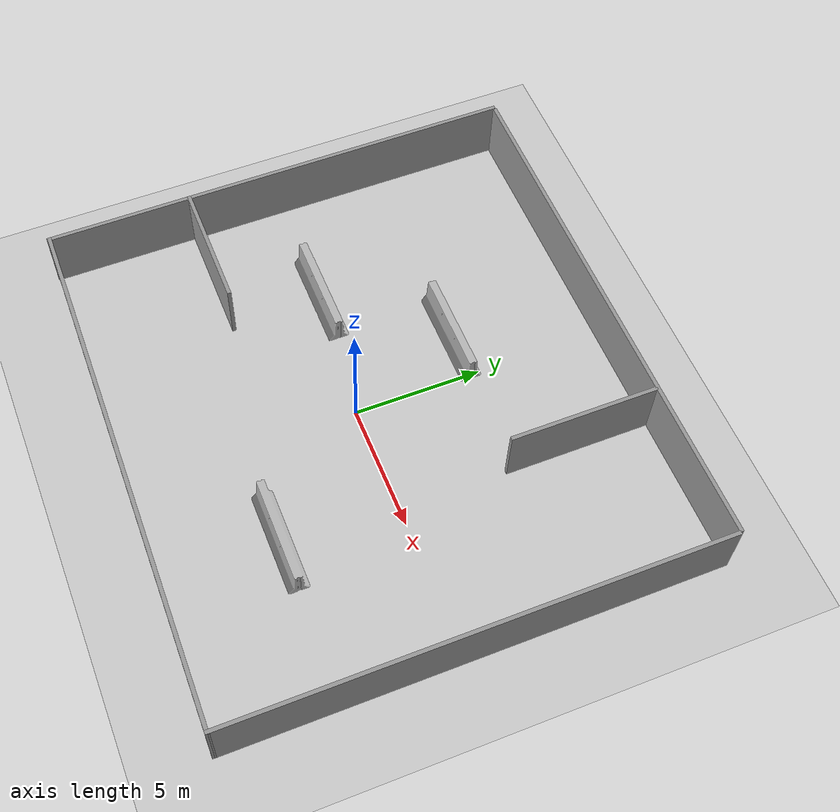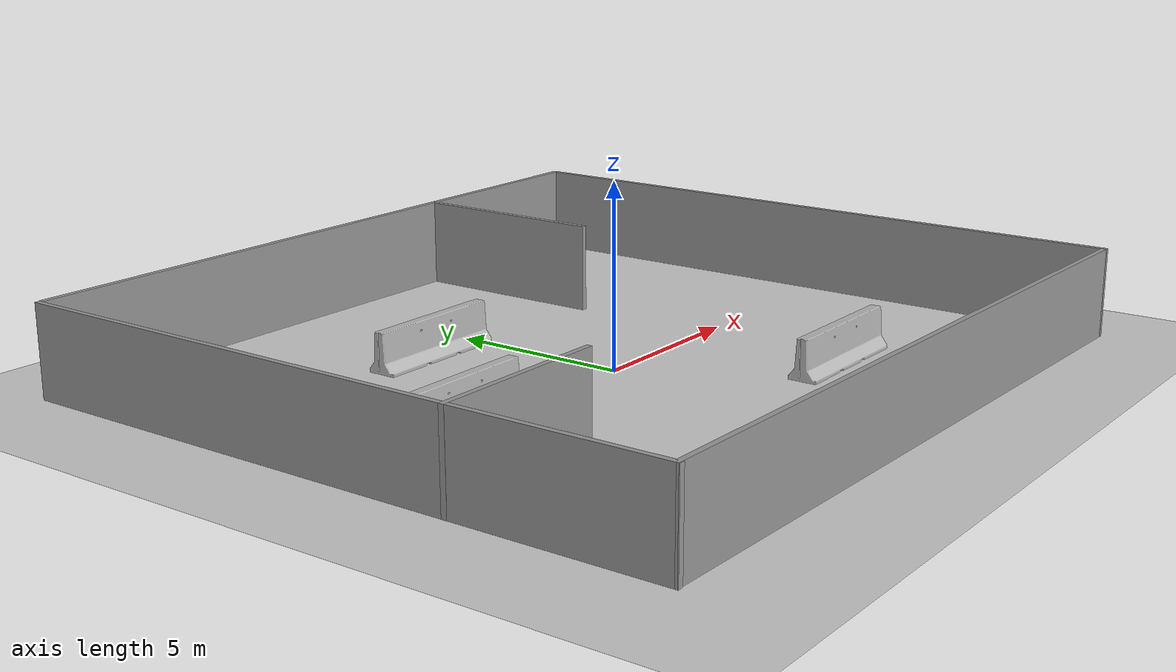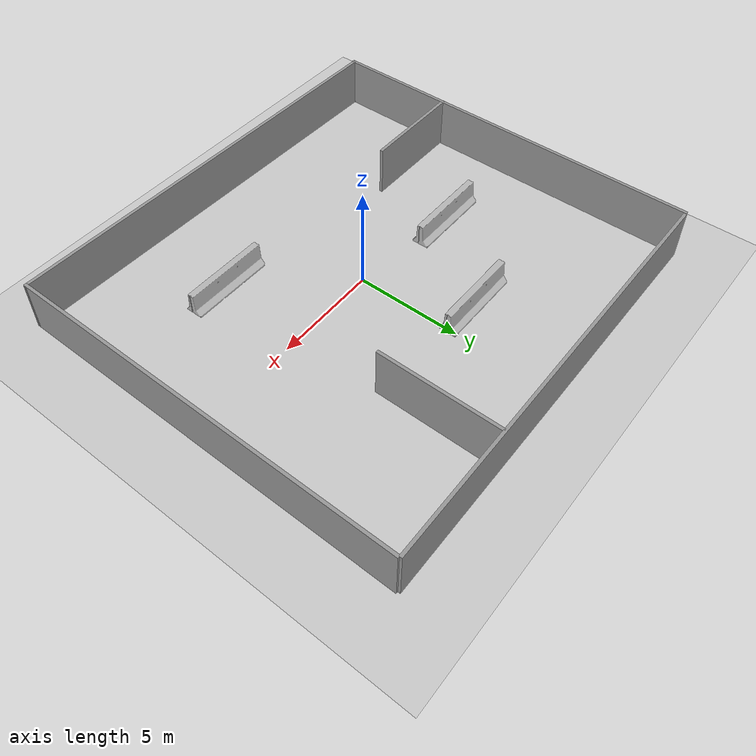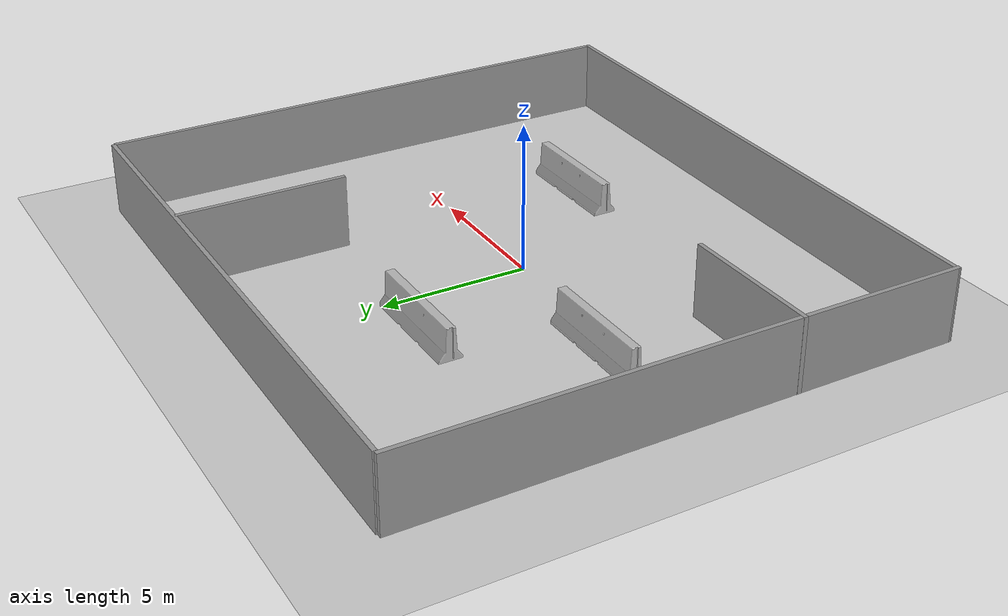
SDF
<sdf version="1.7">
 <world name="default">
  <light name="sun" type="directional">
   <pose>0 0 10 0 -0 0</pose>
   <diffuse>0.8 0.8 0.8 1</diffuse>
   <specular>0.2 0.2 0.2 1</specular>
   <attenuation>
    <range>1000</range>
    <constant>0.9</constant>
    <linear>0.01</linear>
    <quadratic>0.001</quadratic>
   </attenuation>
   <direction>-0.5 0.1 -0.9</direction>
   <spot><inner_angle>0</inner_angle><outer_angle>0</outer_angle><falloff>0</falloff></spot>
  </light>
  <model name="ground_plane">
   <static>1</static>
   <link name="link">
    <collision name="collision">
     <geometry><plane><normal>0 0 1</normal><size>100 100</size></plane></geometry>
     <surface><friction><ode><mu>100</mu><mu2>50</mu2></ode></friction></surface>
    </collision>
    <visual name="visual">
     <cast_shadows>0</cast_shadows>
     <geometry><plane><normal>0 0 1</normal><size>100 100</size></plane></geometry>
     <material>
      <script><uri>file://media/materials/scripts/gazebo.material</uri><name>Gazebo/Grey</name></script>
     </material>
    </visual>
   </link>
  </model>
  <gravity>0 0 -9.8</gravity>
  <magnetic_field>6e-06 2.3e-05 -4.2e-05</magnetic_field>
  <atmosphere type="adiabatic"/>
  <physics type="ode">
   <max_step_size>0.001</max_step_size>
   <real_time_factor>1</real_time_factor>
   <real_time_update_rate>1000</real_time_update_rate>
  </physics>
  <scene><ambient>0.4 0.4 0.4 1</ambient><background>0.7 0.7 0.7 1</background><shadows>1</shadows></scene>
  <spherical_coordinates>
   <surface_model>EARTH_WGS84</surface_model>
   <latitude_deg>0</latitude_deg>
   <longitude_deg>0</longitude_deg>
   <elevation>0</elevation>
   <heading_deg>0</heading_deg>
  </spherical_coordinates>
  <model name="custom_map">
   <pose>0.191195 0.468841 0 0 -0 0</pose>
   <link name="Wall_34">
    <collision name="Wall_34_Collision">
     <geometry><box><size>20.5 0.15 2.5</size></box></geometry>
     <pose>0 0 1.25 0 -0 0</pose>
    </collision>
    <visual name="Wall_34_Visual">
     <pose>0 0 1.25 0 -0 0</pose>
     <geometry><box><size>20.5 0.15 2.5</size></box></geometry>
     <material>
      <script><uri>file://media/materials/scripts/gazebo.material</uri><name>Gazebo/Grey</name></script>
      <ambient>1 1 1 1</ambient>
     </material>
     <meta><layer>0</layer></meta>
    </visual>
    <pose>0.041285 9.48138 0 0 -0 0</pose>
   </link>
   <link name="Wall_36">
    <collision name="Wall_36_Collision">
     <geometry><box><size>18.75 0.15 2.5</size></box></geometry>
     <pose>0 0 1.25 0 -0 0</pose>
    </collision>
    <visual name="Wall_36_Visual">
     <pose>0 0 1.25 0 -0 0</pose>
     <geometry><box><size>18.75 0.15 2.5</size></box></geometry>
     <material>
      <script><uri>file://media/materials/scripts/gazebo.material</uri><name>Gazebo/Grey</name></script>
      <ambient>1 1 1 1</ambient>
     </material>
     <meta><layer>0</layer></meta>
    </visual>
    <pose>-10.2977 0.139063 0 0 -0 -1.5708</pose>
   </link>
   <link name="Wall_37">
    <collision name="Wall_37_Collision">
     <geometry><box><size>20.7525 0.15 2.5</size></box></geometry>
     <pose>0 0 1.25 0 -0 0</pose>
    </collision>
    <visual name="Wall_37_Visual">
     <pose>0 0 1.25 0 -0 0</pose>
     <geometry><box><size>20.7525 0.15 2.5</size></box></geometry>
     <material>
      <script><uri>file://media/materials/scripts/gazebo.material</uri><name>Gazebo/Grey</name></script>
      <ambient>1 1 1 1</ambient>
     </material>
     <meta><layer>0</layer></meta>
    </visual>
    <pose>0.0023 -9.30724 0 0 -0 -0.016785</pose>
   </link>
   <link name="Wall_38">
    <collision name="Wall_38_Collision">
     <geometry><box><size>19 0.15 2.5</size></box></geometry>
     <pose>0 0 1.25 0 -0 0</pose>
    </collision>
    <visual name="Wall_38_Visual">
     <pose>0 0 1.25 0 -0 0</pose>
     <geometry><box><size>19 0.15 2.5</size></box></geometry>
     <material>
      <script><uri>file://media/materials/scripts/gazebo.material</uri><name>Gazebo/Grey</name></script>
      <ambient>1 1 1 1</ambient>
     </material>
     <meta><layer>0</layer></meta>
    </visual>
    <pose>10.3023 -0.055139 0 0 -0 1.5708</pose>
   </link>
   <link name="Wall_40">
    <collision name="Wall_40_Collision">
     <geometry><box><size>5 0.15 2.5</size></box></geometry>
     <pose>0 0 1.25 0 -0 0</pose>
    </collision>
    <visual name="Wall_40_Visual">
     <pose>0 0 1.25 0 -0 0</pose>
     <geometry><box><size>5 0.15 2.5</size></box></geometry>
     <material>
      <script><uri>file://media/materials/scripts/gazebo.material</uri><name>Gazebo/Grey</name></script>
      <ambient>1 1 1 1</ambient>
     </material>
     <meta><layer>0</layer></meta>
    </visual>
    <pose>-7.87833 -3.52061 0 0 -0 0</pose>
   </link>
   <link name="Wall_43">
    <collision name="Wall_43_Collision">
     <geometry><box><size>5.75 0.15 2.5</size></box></geometry>
     <pose>0 0 1.25 0 -0 0</pose>
    </collision>
    <visual name="Wall_43_Visual">
     <pose>0 0 1.25 0 -0 0</pose>
     <geometry><box><size>5.75 0.15 2.5</size></box></geometry>
     <material>
      <script><uri>file://media/materials/scripts/gazebo.material</uri><name>Gazebo/Grey</name></script>
      <ambient>1 1 1 1</ambient>
     </material>
     <meta><layer>0</layer></meta>
    </visual>
    <pose>4.162 6.58561 0 0 -0 -1.5708</pose>
   </link>
   <static>1</static>
  </model>
  <model name="jersey_barrier">
   <static>1</static>
   <link name="link">
    <visual name="visual">
     <geometry><mesh><uri>model://jersey_barrier/meshes/jersey_barrier.dae</uri></mesh></geometry>
    </visual>
    <collision name="upright">
     <pose>0 0 0.5715 0 -0 0</pose>
     <geometry><box><size>4.06542 0.3063 1.143</size></box></geometry>
    </collision>
    <collision name="base">
     <pose>0 0 0.032258 0 -0 0</pose>
     <geometry><box><size>4.06542 0.8107 0.064516</size></box></geometry>
    </collision>
    <collision name="base2">
     <pose>0 0 0.1 0 -0 0</pose>
     <geometry><box><size>4.06542 0.65 0.1</size></box></geometry>
    </collision>
    <collision name="base3">
     <pose>0 0 0.2 0 -0 0</pose>
     <geometry><box><size>4.06542 0.5 0.1</size></box></geometry>
    </collision>
    <collision name="left-angle">
     <pose>0 -0.224 0.2401 0.9 -0 0</pose>
     <geometry><box><size>4.06542 0.5 0.064516</size></box></geometry>
    </collision>
    <collision name="right-angle">
     <pose>0 0.224 0.2401 -0.9 0 0</pose>
     <geometry><box><size>4.06542 0.5 0.064516</size></box></geometry>
    </collision>
   </link>
   <pose>-1.82487 4.64452 0 0 -0 0</pose>
  </model>
  <model name="jersey_barrier_0">
   <static>1</static>
   <link name="link">
    <visual name="visual">
     <geometry><mesh><uri>model://jersey_barrier/meshes/jersey_barrier.dae</uri></mesh></geometry>
    </visual>
    <collision name="upright">
     <pose>0 0 0.5715 0 -0 0</pose>
     <geometry><box><size>4.06542 0.3063 1.143</size></box></geometry>
    </collision>
    <collision name="base">
     <pose>0 0 0.032258 0 -0 0</pose>
     <geometry><box><size>4.06542 0.8107 0.064516</size></box></geometry>
    </collision>
    <collision name="base2">
     <pose>0 0 0.1 0 -0 0</pose>
     <geometry><box><size>4.06542 0.65 0.1</size></box></geometry>
    </collision>
    <collision name="base3">
     <pose>0 0 0.2 0 -0 0</pose>
     <geometry><box><size>4.06542 0.5 0.1</size></box></geometry>
    </collision>
    <collision name="left-angle">
     <pose>0 -0.224 0.2401 0.9 -0 0</pose>
     <geometry><box><size>4.06542 0.5 0.064516</size></box></geometry>
    </collision>
    <collision name="right-angle">
     <pose>0 0.224 0.2401 -0.9 0 0</pose>
     <geometry><box><size>4.06542 0.5 0.064516</size></box></geometry>
    </collision>
   </link>
   <pose>4.01823 -4.41461 0 0 -0 0</pose>
  </model>
  <model name="jersey_barrier_1">
   <static>1</static>
   <link name="link">
    <visual name="visual">
     <geometry><mesh><uri>model://jersey_barrier/meshes/jersey_barrier.dae</uri></mesh></geometry>
    </visual>
    <collision name="upright">
     <pose>0 0 0.5715 0 -0 0</pose>
     <geometry><box><size>4.06542 0.3063 1.143</size></box></geometry>
    </collision>
    <collision name="base">
     <pose>0 0 0.032258 0 -0 0</pose>
     <geometry><box><size>4.06542 0.8107 0.064516</size></box></geometry>
    </collision>
    <collision name="base2">
     <pose>0 0 0.1 0 -0 0</pose>
     <geometry><box><size>4.06542 0.65 0.1</size></box></geometry>
    </collision>
    <collision name="base3">
     <pose>0 0 0.2 0 -0 0</pose>
     <geometry><box><size>4.06542 0.5 0.1</size></box></geometry>
    </collision>
    <collision name="left-angle">
     <pose>0 -0.224 0.2401 0.9 -0 0</pose>
     <geometry><box><size>4.06542 0.5 0.064516</size></box></geometry>
    </collision>
    <collision name="right-angle">
     <pose>0 0.224 0.2401 -0.9 0 0</pose>
     <geometry><box><size>4.06542 0.5 0.064516</size></box></geometry>
    </collision>
   </link>
   <pose>-5.3693 0.614816 0 0 -0 0</pose>
  </model>
 </world>
</sdf>
